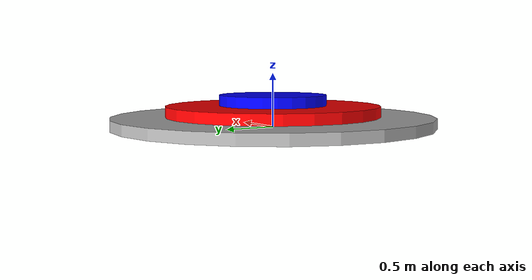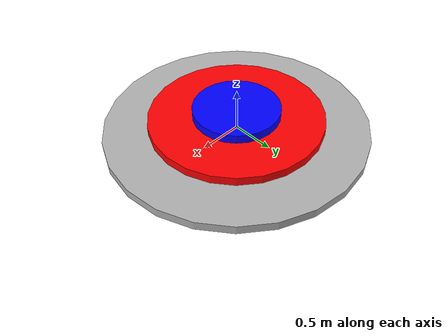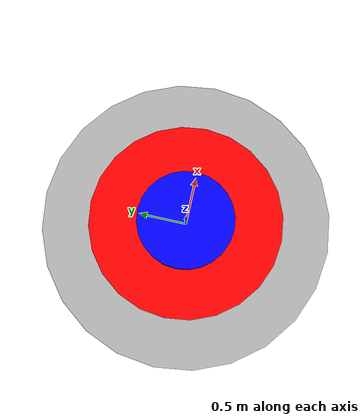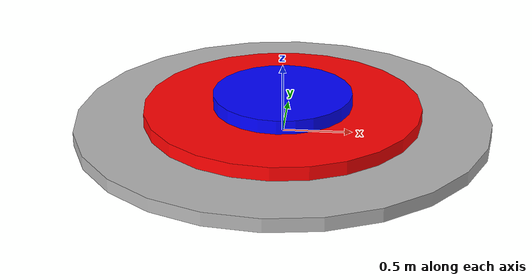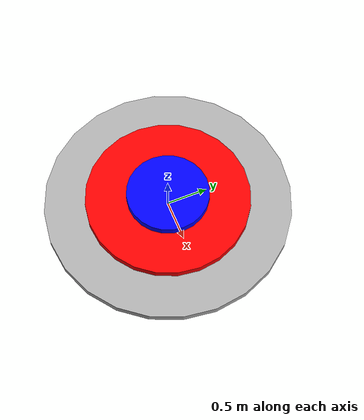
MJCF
<mujoco>
  <option timestep="0.002" gravity="0 0 -9.81"/>
  <asset>
    <material name="gray"   rgba="0.7 0.7 0.7 1"/>
    <material name="red"    rgba="1 0 0 1"/>
    <material name="blue"   rgba="0 0 1 1"/>
    <material name="yellow" rgba="1 1 0 1"/>
    <material name="black"  rgba="0.1 0.1 0.1 1"/>
  </asset>

  <worldbody>
    <!-- 3段円柱フィールド -->
    <geom type="cylinder" size="1.5 0.05" pos="0 0 0.05" material="gray"/>
    <geom type="cylinder" size="1.0 0.05" pos="0 0 0.15" material="red"/>
    <geom type="cylinder" size="0.5 0.05" pos="0 0 0.25" material="blue"/>

    <!-- コイン配置（例） -->
    <!-- ...（省略、必要に応じて追加）... -->

    <!-- ロボット本体 -->
    <body name="robot" pos="0 0 0.12">
      <geom type="box" size="0.1 0.1 0.03" material="black"/>

      <!-- 左右の車輪 -->
      <body name="left_wheel" pos="0 0.11 -0.02">
        <joint name="left_hinge"  type="hinge" axis="0 -1 0" pos="0 0 0"/>
        <geom type="cylinder" size="0.05 0.02" material="black"/>
      </body>
      <body name="right_wheel" pos="0 -0.11 -0.02">
        <joint name="right_hinge" type="hinge" axis="0 -1 0" pos="0 0 0"/>
        <geom type="cylinder" size="0.05 0.02" material="black"/>
      </body>

      <!-- ジャンプ用アクチュエータ -->
      <joint name="jump_slider" type="slide" axis="0 0 1" pos="0 0 0"/>
    </body>
  </worldbody>

  <!-- アクチュエータ -->
  <actuator>
    <motor name="left_motor"  joint="left_hinge" gear="150"/>
    <motor name="right_motor" joint="right_hinge" gear="150"/>
    <motor name="jump_motor"  joint="jump_slider" gear="100"/>
  </actuator>
</mujoco>
